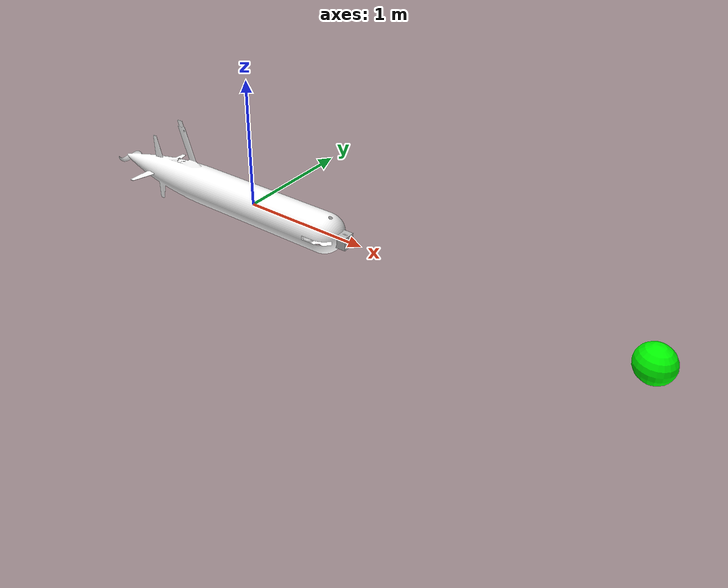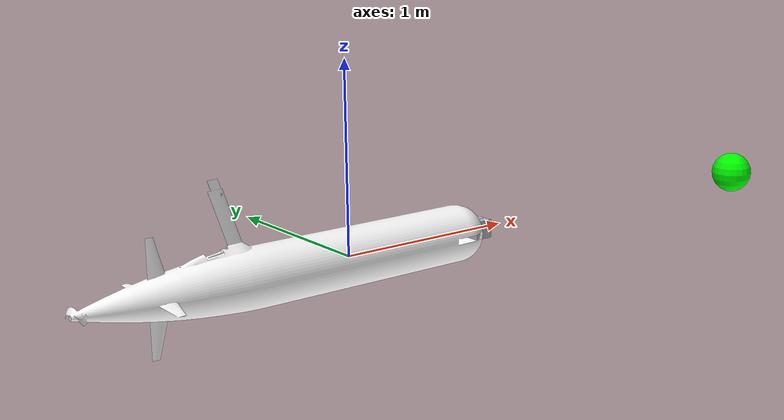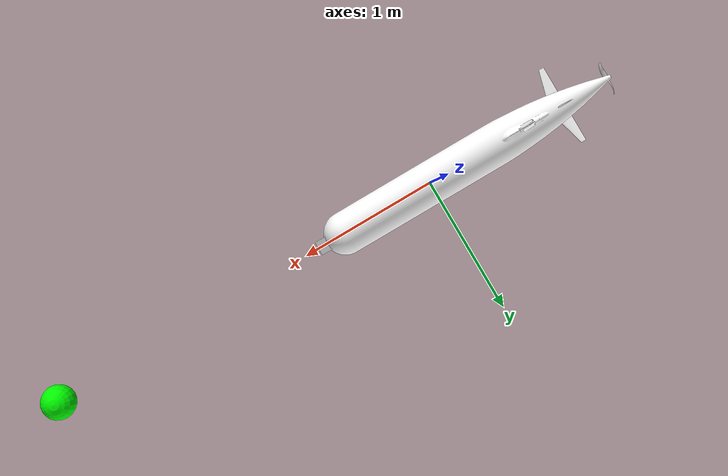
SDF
<?xml version="1.0" ?>

<sdf version="1.9">
  <world name="buoyant_lrauv">
    <scene>
      <ambient>0.0 1.0 1.0</ambient>
      <background>0.0 0.7 0.8</background>
    </scene>

    <physics name="1ms" type="ode">
      <max_step_size>0.001</max_step_size>
      <real_time_factor>1.0</real_time_factor>
    </physics>
    <plugin
      filename="gz-sim-physics-system"
      name="gz::sim::systems::Physics">
    </plugin>
    <plugin
      filename="gz-sim-sensors-system"
      name="gz::sim::systems::Sensors">
      <render_engine>ogre2</render_engine>
    </plugin>
    <plugin
      filename="gz-sim-user-commands-system"
      name="gz::sim::systems::UserCommands">
    </plugin>
    <plugin
      filename="gz-sim-scene-broadcaster-system"
      name="gz::sim::systems::SceneBroadcaster">
    </plugin>
    <plugin
      filename="gz-sim-contact-system"
      name="gz::sim::systems::Contact">
    </plugin>

    <plugin
      filename="gz-sim-buoyancy-system"
      name="gz::sim::systems::Buoyancy">
      <uniform_fluid_density>1000</uniform_fluid_density>
    </plugin>

    <plugin
      filename="gz-sim-particle-emitter-system"
      name="gz::sim::systems::ParticleEmitter">
    </plugin>

    <light type="directional" name="sun">
      <cast_shadows>true</cast_shadows>
      <pose>0 0 10 0 0 0</pose>
      <diffuse>1 1 1 1</diffuse>
      <specular>0.5 0.5 0.5 1</specular>
      <attenuation>
        <range>1000</range>
        <constant>0.9</constant>
        <linear>0.01</linear>
        <quadratic>0.001</quadratic>
      </attenuation>
      <direction>-0.5 0.1 -0.9</direction>
    </light>

    <gui>
      <plugin filename="MinimalScene" name="3D View">
        <gz-gui>
          <title>3D View</title>
          <property type="bool" key="showTitleBar">false</property>
          <property type="string" key="state">docked</property>
        </gz-gui>

        <engine>ogre2</engine>
        <scene>scene</scene>
        <ambient_light>0.4 0.4 0.4</ambient_light>
        <background_color>0.8 0.8 0.8</background_color>
        <camera_pose>5 -1.5 3 0 0.37 2.8</camera_pose>
      </plugin>

      <!-- Plugins that add functionality to the scene -->
      <plugin filename="EntityContextMenuPlugin" name="Entity context menu">
        <gz-gui>
          <property key="state" type="string">floating</property>
          <property key="width" type="double">5</property>
          <property key="height" type="double">5</property>
          <property key="showTitleBar" type="bool">false</property>
        </gz-gui>
      </plugin>
      <plugin filename="GzSceneManager" name="Scene Manager">
        <gz-gui>
          <property key="resizable" type="bool">false</property>
          <property key="width" type="double">5</property>
          <property key="height" type="double">5</property>
          <property key="state" type="string">floating</property>
          <property key="showTitleBar" type="bool">false</property>
        </gz-gui>
      </plugin>
      <plugin filename="InteractiveViewControl" name="Interactive view control">
        <gz-gui>
          <property key="resizable" type="bool">false</property>
          <property key="width" type="double">5</property>
          <property key="height" type="double">5</property>
          <property key="state" type="string">floating</property>
          <property key="showTitleBar" type="bool">false</property>
        </gz-gui>
      </plugin>
      <plugin filename="CameraTracking" name="Camera Tracking">
        <gz-gui>
          <property key="resizable" type="bool">false</property>
          <property key="width" type="double">5</property>
          <property key="height" type="double">5</property>
          <property key="state" type="string">floating</property>
          <property key="showTitleBar" type="bool">false</property>
        </gz-gui>
      </plugin>
      <!-- World control -->
      <plugin filename="WorldControl" name="World control">
        <gz-gui>
          <title>World control</title>
          <property type="bool" key="showTitleBar">false</property>
          <property type="bool" key="resizable">false</property>
          <property type="double" key="height">72</property>
          <property type="double" key="z">1</property>

          <property type="string" key="state">floating</property>
          <anchors target="3D View">
            <line own="left" target="left"/>
            <line own="bottom" target="bottom"/>
          </anchors>
        </gz-gui>

        <play_pause>true</play_pause>
        <step>true</step>
        <start_paused>false</start_paused>
        <use_event>true</use_event>

      </plugin>

      <!-- World statistics -->
      <plugin filename="WorldStats" name="World stats">
        <gz-gui>
          <title>World stats</title>
          <property type="bool" key="showTitleBar">false</property>
          <property type="bool" key="resizable">false</property>
          <property type="double" key="height">110</property>
          <property type="double" key="width">290</property>
          <property type="double" key="z">1</property>

          <property type="string" key="state">floating</property>
          <anchors target="3D View">
            <line own="right" target="right"/>
            <line own="bottom" target="bottom"/>
          </anchors>
        </gz-gui>

        <sim_time>true</sim_time>
        <real_time>true</real_time>
        <real_time_factor>true</real_time_factor>
        <iterations>true</iterations>
      </plugin>

      <plugin filename="MarkerManager" name="Marker manager">
        <gz-gui>
          <property key="resizable" type="bool">false</property>
          <property key="width" type="double">5</property>
          <property key="height" type="double">5</property>
          <property key="state" type="string">floating</property>
          <property key="showTitleBar" type="bool">false</property>
        </gz-gui>
      </plugin>

      <plugin filename="SelectEntities" name="Select Entities">
        <gz-gui>
          <anchors target="Select entities">
            <line own="right" target="right"/>
            <line own="top" target="top"/>
          </anchors>
          <property key="resizable" type="bool">false</property>
          <property key="width" type="double">5</property>
          <property key="height" type="double">5</property>
          <property key="state" type="string">floating</property>
          <property key="showTitleBar" type="bool">false</property>
        </gz-gui>
      </plugin>

      <plugin filename="VisualizationCapabilities" name="Visualization Capabilities">
        <gz-gui>
          <anchors target="Select entities">
            <line own="right" target="right"/>
            <line own="top" target="top"/>
          </anchors>
          <property key="resizable" type="bool">false</property>
          <property key="width" type="double">5</property>
          <property key="height" type="double">5</property>
          <property key="state" type="string">floating</property>
          <property key="showTitleBar" type="bool">false</property>
        </gz-gui>
      </plugin>

      <!--Image Display Camera Topic-->
      <plugin filename="ImageDisplay" name="Image Display">
        <gz-gui>
          <property key="state" type="string">docked</property>
        </gz-gui>
        <topic>camera</topic>
      </plugin>

      <plugin filename="ImageDisplay" name="Image Display 2">
        <gz-gui>
          <title>RGBD: image</title>
          <property key="state" type="string">floating</property>
          <property type="double" key="width">350</property>
          <property type="double" key="height">315</property>
          <property type="double" key="y">320</property>
        </gz-gui>
        <topic>rgbd_camera/image</topic>
        <topic_picker>false</topic_picker>
      </plugin>

      <plugin filename="ImageDisplay" name="Image Display 3">
        <gz-gui>
          <title>RGBD: depth</title>
          <property key="state" type="string">floating</property>
          <property type="double" key="width">350</property>
          <property type="double" key="height">315</property>
          <property type="double" key="x">500</property>
          <property type="double" key="y">320</property>
        </gz-gui>
        <topic>rgbd_camera/depth_image</topic>
        <topic_picker>false</topic_picker>
      </plugin>

      <!-- Inspector -->
      <plugin filename="ComponentInspector" name="Component inspector">
        <gz-gui>
          <property type="string" key="state">docked</property>
        </gz-gui>
      </plugin>

      <!-- Entity tree -->
      <plugin filename="EntityTree" name="Entity tree">
      </plugin>

    </gui>

    <model name="my_lrauv">
      <include merge="true" >
        <!-- align with NED (face North) -->
        <pose degrees="true">0 0 0 0 0 -180</pose>
        <uri>my_lrauv</uri>

        <plugin
          filename="gz-sim-odometry-publisher-system"
          name="gz::sim::systems::OdometryPublisher">
        </plugin>

        <!-- Joint controllers -->
        <plugin
          filename="gz-sim-joint-position-controller-system"
          name="gz::sim::systems::JointPositionController">
          <joint_name>horizontal_fins_joint</joint_name>
          <p_gain>0.1</p_gain>
        </plugin>

        <plugin
          filename="gz-sim-joint-position-controller-system"
          name="gz::sim::systems::JointPositionController">
          <joint_name>vertical_fins_joint</joint_name>
          <p_gain>0.1</p_gain>
        </plugin>

        <!-- Uncomment to add a thruster -->
        <plugin
          filename="gz-sim-thruster-system"
          name="gz::sim::systems::Thruster">
          <namespace>my_lrauv</namespace>
          <use_angvel_cmd>0</use_angvel_cmd>
          <joint_name>propeller_joint</joint_name>
          <thrust_coefficient>0.004422</thrust_coefficient>
          <fluid_density>1000</fluid_density>
          <propeller_diameter>0.2</propeller_diameter>
        </plugin>

        <!-- Lift and drag -->

        <!-- Vertical fin -->
        <plugin
          filename="gz-sim-lift-drag-system"
          name="gz::sim::systems::LiftDrag">
          <air_density>1000</air_density>
          <cla>4.13</cla>
          <cla_stall>-1.1</cla_stall>
          <cda>0.2</cda>
          <cda_stall>0.03</cda_stall>
          <alpha_stall>0.17</alpha_stall>
          <a0>0</a0>
          <area>0.0244</area>
          <upward>0 1 0</upward>
          <forward>-1 0 0</forward>
          <link_name>vertical_fins</link_name>
          <cp>0 0 0</cp>
        </plugin>

        <!-- Horizontal fin -->
        <plugin
          filename="gz-sim-lift-drag-system"
          name="gz::sim::systems::LiftDrag">
          <air_density>1000</air_density>
          <cla>4.13</cla>
          <cla_stall>-1.1</cla_stall>
          <cda>0.2</cda>
          <cda_stall>0.03</cda_stall>
          <alpha_stall>0.17</alpha_stall>
          <a0>0</a0>
          <area>0.0244</area>
          <upward>0 0 1</upward>
          <forward>1 0 0</forward>
          <link_name>horizontal_fins</link_name>
          <cp>0 0 0</cp>
        </plugin>

        <!-- Uncomment to add hydrodynamics -->
        <plugin
          filename="gz-sim-hydrodynamics-system"
          name="gz::sim::systems::Hydrodynamics">
          <link_name>base_link</link_name>
          <xDotU>-4.876161</xDotU>
          <yDotV>-126.324739</yDotV>
          <zDotW>-126.324739</zDotW>
          <kDotP>0</kDotP>
          <mDotQ>-33.46</mDotQ>
          <nDotR>-33.46</nDotR>
          <xUabsU>-6.2282</xUabsU>
          <xU>0</xU>
          <yVabsV>-601.27</yVabsV>
          <yV>0</yV>
          <zWabsW>-601.27</zWabsW>
          <zW>0</zW>
          <kPabsP>-0.1916</kPabsP>
          <kP>0</kP>
          <mQabsQ>-632.698957</mQabsQ>
          <mQ>0</mQ>
          <nRabsR>-632.698957</nRabsR>
          <nR>0</nR>
        </plugin>

      </include>
    </model>

    <model name="sphere">
      <static>true</static>
      <pose>3 0 0 0 0 0</pose>
      <link name="sphere_link">
        <collision name="sphere_collision">
          <geometry>
            <sphere>
              <radius>0.125</radius>
            </sphere>
          </geometry>
        </collision>
        <visual name="sphere_visual">
          <geometry>
            <sphere>
              <radius>0.125</radius>
            </sphere>
          </geometry>
          <material>
            <ambient>0 1 0 1</ambient>
            <diffuse>0 1 0 1</diffuse>
            <specular>0 1 0 1</specular>
          </material>
          <cast_shadows>false</cast_shadows>
        </visual>
      </link>
    </model>

  </world>
</sdf>

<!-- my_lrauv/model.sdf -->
<sdf version="1.6">
  <model name="my_lrauv">
    <!-- Body -->
    <link name="base_link">
      <inertial>
        <mass>147.8671</mass>
        <inertia>
          <ixx>3.000000</ixx>
          <ixy>0</ixy>
          <ixz>0</ixz>
          <iyy>41.980233</iyy>
          <iyz>0</iyz>
          <izz>41.980233</izz>
        </inertia>
      </inertial>
      <!-- Uncomment this block to enable neutral buoyancy. -->
      <collision name="main_body_buoyancy">
        <geometry>
          <box>
            <size>2 0.3 0.2464451666666667</size>
          </box>
        </geometry>
      </collision>
      <visual name="visual">
        <geometry>
          <mesh>
            <uri>meshes/tethys.dae</uri>
            <submesh>
              <name>Body</name>
                <center>false</center>
            </submesh>
          </mesh>
        </geometry>
        <material>
          <diffuse>1.0 1.0 1.0</diffuse>
          <specular>1.0 1.0 1.0</specular>
          <pbr>
            <metal>
              <albedo_map>materials/textures/Tethys_Albedo.png</albedo_map>
              <normal_map>materials/textures/Tethys_Normal.png</normal_map>
              <metalness_map>materials/textures/Tethys_Metalness.png</metalness_map>
              <roughness_map>materials/textures/Tethys_Roughness.png</roughness_map>
            </metal>
          </pbr>
        </material>
      </visual>
    </link>
    <!-- Horizontal fins -->
    <link name="horizontal_fins">
      <pose>1.05 0 0 0 0 0</pose>
      <inertial>
        <pose>0 0 0 1.57 0 0.5</pose>
        <mass>0.2</mass>
        <inertia>
          <ixx>0.0007924568755</ixx>
          <ixy>-0.0000000002674</ixy>
          <ixz>0.0003978158176</ixz>
          <iyy>0.0010546736475</iyy>
          <iyz>-0.0000000006729</iyz>
          <izz>0.0002633558262</izz>
         </inertia>
      </inertial>
      <collision name="collision">
        <geometry>
          <box>
            <size>0.1 0.1 0.02</size>
          </box>
        </geometry>
      </collision>
      <visual name="visual">
        <pose>-1.05 0 0 0 0 0</pose>
        <geometry>
          <mesh>
            <uri>meshes/tethys.dae</uri>
            <submesh>
              <name>Fins_Horizontal</name>
              <center>false</center>
            </submesh>
          </mesh>
        </geometry>
        <material>
          <diffuse>1.0 1.0 1.0</diffuse>
          <specular>1.0 1.0 1.0</specular>
          <pbr>
            <metal>
              <albedo_map>materials/textures/Tethys_Albedo.png</albedo_map>
              <normal_map>materials/textures/Tethys_Normal.png</normal_map>
              <metalness_map>materials/textures/Tethys_Metalness.png</metalness_map>
              <roughness_map>materials/textures/Tethys_Roughness.png</roughness_map>
            </metal>
          </pbr>
        </material>
        </visual>
    </link>
    <!-- Vertical fins -->
    <link name="vertical_fins">
      <pose>1.05 0 0 0 0 0</pose>
      <inertial>
        <mass>0.2</mass>
        <inertia>
          <ixx>0.0007924568755</ixx>
          <ixy>-0.0000000002674</ixy>
          <ixz>0.0003978158176</ixz>
          <iyy>0.0010546736475</iyy>
          <iyz>-0.0000000006729</iyz>
          <izz>0.0002633558262</izz>
        </inertia>
      </inertial>
      <collision name="collision">
        <geometry>
          <box>
            <size>0.1 0.1 0.02</size>
          </box>
        </geometry>
      </collision>
      <visual name="visual">
        <pose>-1.05 0 0 0 0 0</pose>
        <geometry>
          <mesh>
            <uri>meshes/tethys.dae</uri>
            <submesh>
              <name>Fins_vertical</name>
              <center>false</center>
            </submesh>
          </mesh>
        </geometry>
        <material>
          <diffuse>1.0 1.0 1.0</diffuse>
          <specular>1.0 1.0 1.0</specular>
          <pbr>
            <metal>
              <albedo_map>materials/textures/Tethys_Albedo.png</albedo_map>
              <normal_map>materials/textures/Tethys_Normal.png</normal_map>
              <metalness_map>materials/textures/Tethys_Metalness.png</metalness_map>
              <roughness_map>materials/textures/Tethys_Roughness.png</roughness_map>
            </metal>
          </pbr>
        </material>
      </visual>
    </link>
    <!-- Propeller -->
    <link name="propeller">
      <pose>1.43162 0 0 0 0 0</pose>
      <inertial>
        <pose>0 0 0 0 0 0</pose>
        <mass>0.09</mass>
        <inertia>
          <ixx>0.000143971303</ixx>
          <ixy>0.000000000008</ixy>
          <ixz>-0.000000000224</ixz>
          <iyy>0.000140915448</iyy>
          <iyz>-0.000025236433</iyz>
          <izz>0.000033571862</izz>
        </inertia>
      </inertial>
      <collision name="collision">
        <geometry>
          <box>
            <size>0.03 0.1 0.03</size>
          </box>
        </geometry>
      </collision>
      <visual name="visual">
        <pose>-1.43162 0 0 0 0 0</pose>
        <geometry>
          <mesh>
            <uri>meshes/tethys.dae</uri>
            <submesh>
              <name>Prop</name>
              <center>false</center>
            </submesh>
          </mesh>
        </geometry>
        <material>
          <diffuse>1.0 1.0 1.0</diffuse>
          <specular>1.0 1.0 1.0</specular>
          <pbr>
            <metal>
              <albedo_map>materials/textures/Tethys_Albedo.png</albedo_map>
              <normal_map>materials/textures/Tethys_Normal.png</normal_map>
              <metalness_map>materials/textures/Tethys_Metalness.png</metalness_map>
              <roughness_map>materials/textures/Tethys_Roughness.png</roughness_map>
            </metal>
          </pbr>
        </material>
      </visual>
    </link>

    <!--Camera LInk-->

      <link name="camera_link">
        <pose>-0.85 0 0 0 -3.14 0</pose>
        <collision name="collision">
          <geometry>
            <box>
              <size>0.1 0.1 0.1</size>
            </box>
          </geometry>
        </collision>
        <visual name="visual">
          <geometry>
            <box>
              <size>0.1 0.1 0.1</size>
            </box>
          </geometry>
        </visual>
        <sensor name="rgbd_camera" type="rgbd_camera">
          <camera>
            <horizontal_fov>1.047</horizontal_fov>
            <image>
              <format>R8G8B8</format>
              <width>320</width>
              <height>240</height>
            </image>
            <clip>
              <near>0.1</near>
              <far>100</far>
            </clip>
          </camera>
          <always_on>1</always_on>
          <update_rate>10</update_rate>
          <visualize>true</visualize>
          <topic>rgbd_camera</topic>
          <enable_metrics>true</enable_metrics>
        </sensor>
      </link>

    <!-- Joints -->
    <joint name="horizontal_fins_joint" type="revolute">
      <pose>0 0 0 0 0 0</pose>
      <parent>base_link</parent>
      <child>horizontal_fins</child>
      <axis>
        <xyz>0 1 0</xyz>
        <limit>
          <lower>-0.261799</lower>
          <upper>0.261799</upper>
          <effort>-1</effort>
          <velocity>-1</velocity>
        </limit>
      </axis>
    </joint>
    <joint name="vertical_fins_joint" type="revolute">
      <pose>0 0 0 0 0 0</pose>
      <parent>base_link</parent>
      <child>vertical_fins</child>
      <axis>
        <xyz>0 0 1</xyz>
        <limit>
          <lower>-0.261799</lower>
          <upper>0.261799</upper>
          <effort>-1</effort>
          <velocity>-1</velocity>
        </limit>
      </axis>
    </joint>
    <joint name="propeller_joint" type="revolute">
      <pose>0 0 0 0 0 0</pose>
      <parent>base_link</parent>
      <child>propeller</child>
      <axis>
        <xyz>1 0 0</xyz>
        <limit>
          <lower>-1e+12</lower>
          <upper>1e+12</upper>
          <effort>-1</effort>
          <velocity>-1</velocity>
        </limit>
      </axis>
    </joint>
    <joint name="camera_joint" type="fixed">
      <pose>0 0 0 0 0 0</pose>
      <parent>base_link</parent>
      <child>camera_link</child>
    </joint>

  </model>
</sdf>
